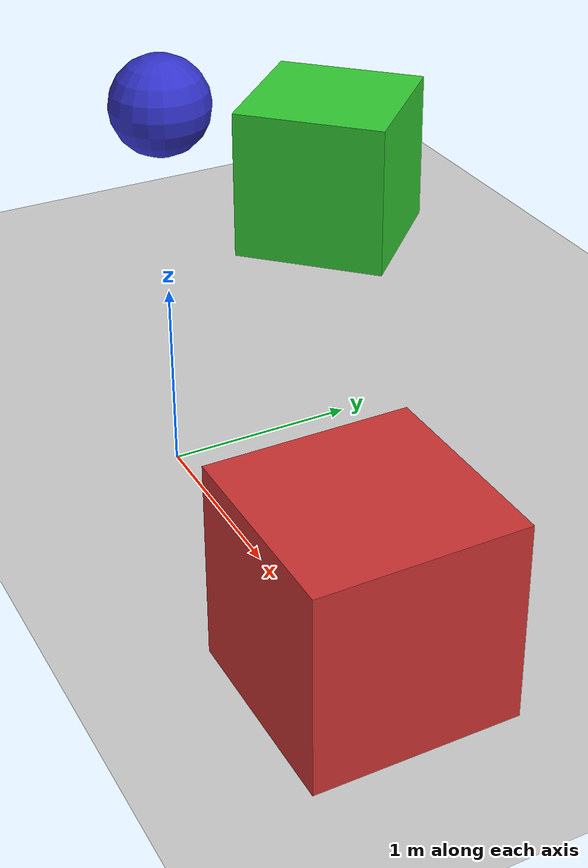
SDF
<?xml version="1.0" ?>
<!--
  Simple Gazebo Garden World

  Contains:
  - Ground plane
  - Directional lighting
  - Box obstacles
  - Sphere object

  Usage: gz sim simple_world.sdf
-->
<sdf version="1.8">
  <world name="simple_world">

    <!-- Physics engine configuration -->
    <physics name="dart_physics" type="dart">
      <max_step_size>0.001</max_step_size>
      <real_time_factor>1.0</real_time_factor>
      <real_time_update_rate>1000</real_time_update_rate>
    </physics>

    <!-- Lighting -->
    <light type="directional" name="sun">
      <cast_shadows>true</cast_shadows>
      <pose>0 0 10 0 0 0</pose>
      <diffuse>0.8 0.8 0.8 1</diffuse>
      <specular>0.2 0.2 0.2 1</specular>
      <attenuation>
        <range>1000</range>
        <constant>0.9</constant>
        <linear>0.01</linear>
        <quadratic>0.001</quadratic>
      </attenuation>
      <direction>-0.5 0.1 -0.9</direction>
    </light>

    <!-- Ground plane -->
    <model name="ground_plane">
      <static>true</static>
      <link name="link">
        <collision name="collision">
          <geometry>
            <plane>
              <normal>0 0 1</normal>
              <size>100 100</size>
            </plane>
          </geometry>
          <surface>
            <friction>
              <ode>
                <mu>1.0</mu>
                <mu2>1.0</mu2>
              </ode>
            </friction>
          </surface>
        </collision>
        <visual name="visual">
          <geometry>
            <plane>
              <normal>0 0 1</normal>
              <size>100 100</size>
            </plane>
          </geometry>
          <material>
            <ambient>0.8 0.8 0.8 1</ambient>
            <diffuse>0.8 0.8 0.8 1</diffuse>
            <specular>0.8 0.8 0.8 1</specular>
          </material>
        </visual>
      </link>
    </model>

    <!-- Red box obstacle -->
    <model name="box_red">
      <pose>2 0 0.5 0 0 0</pose>
      <static>true</static>
      <link name="link">
        <collision name="collision">
          <geometry>
            <box>
              <size>1 1 1</size>
            </box>
          </geometry>
        </collision>
        <visual name="visual">
          <geometry>
            <box>
              <size>1 1 1</size>
            </box>
          </geometry>
          <material>
            <ambient>0.8 0.2 0.2 1</ambient>
            <diffuse>0.8 0.2 0.2 1</diffuse>
            <specular>0.8 0.2 0.2 1</specular>
          </material>
        </visual>
      </link>
    </model>

    <!-- Green box obstacle -->
    <model name="box_green">
      <pose>-2 2 0.5 0 0 0.785</pose>
      <static>true</static>
      <link name="link">
        <collision name="collision">
          <geometry>
            <box>
              <size>1 1 1</size>
            </box>
          </geometry>
        </collision>
        <visual name="visual">
          <geometry>
            <box>
              <size>1 1 1</size>
            </box>
          </geometry>
          <material>
            <ambient>0.2 0.8 0.2 1</ambient>
            <diffuse>0.2 0.8 0.2 1</diffuse>
            <specular>0.2 0.8 0.2 1</specular>
          </material>
        </visual>
      </link>
    </model>

    <!-- Blue sphere (dynamic) -->
    <model name="sphere_blue">
      <pose>0 0 2 0 0 0</pose>
      <link name="link">
        <inertial>
          <mass>1.0</mass>
          <inertia>
            <ixx>0.04</ixx>
            <ixy>0</ixy>
            <ixz>0</ixz>
            <iyy>0.04</iyy>
            <iyz>0</iyz>
            <izz>0.04</izz>
          </inertia>
        </inertial>
        <collision name="collision">
          <geometry>
            <sphere>
              <radius>0.25</radius>
            </sphere>
          </geometry>
          <surface>
            <bounce>
              <restitution_coefficient>0.7</restitution_coefficient>
            </bounce>
          </surface>
        </collision>
        <visual name="visual">
          <geometry>
            <sphere>
              <radius>0.25</radius>
            </sphere>
          </geometry>
          <material>
            <ambient>0.2 0.2 0.8 1</ambient>
            <diffuse>0.2 0.2 0.8 1</diffuse>
            <specular>0.2 0.2 0.8 1</specular>
          </material>
        </visual>
      </link>
    </model>

  </world>
</sdf>
